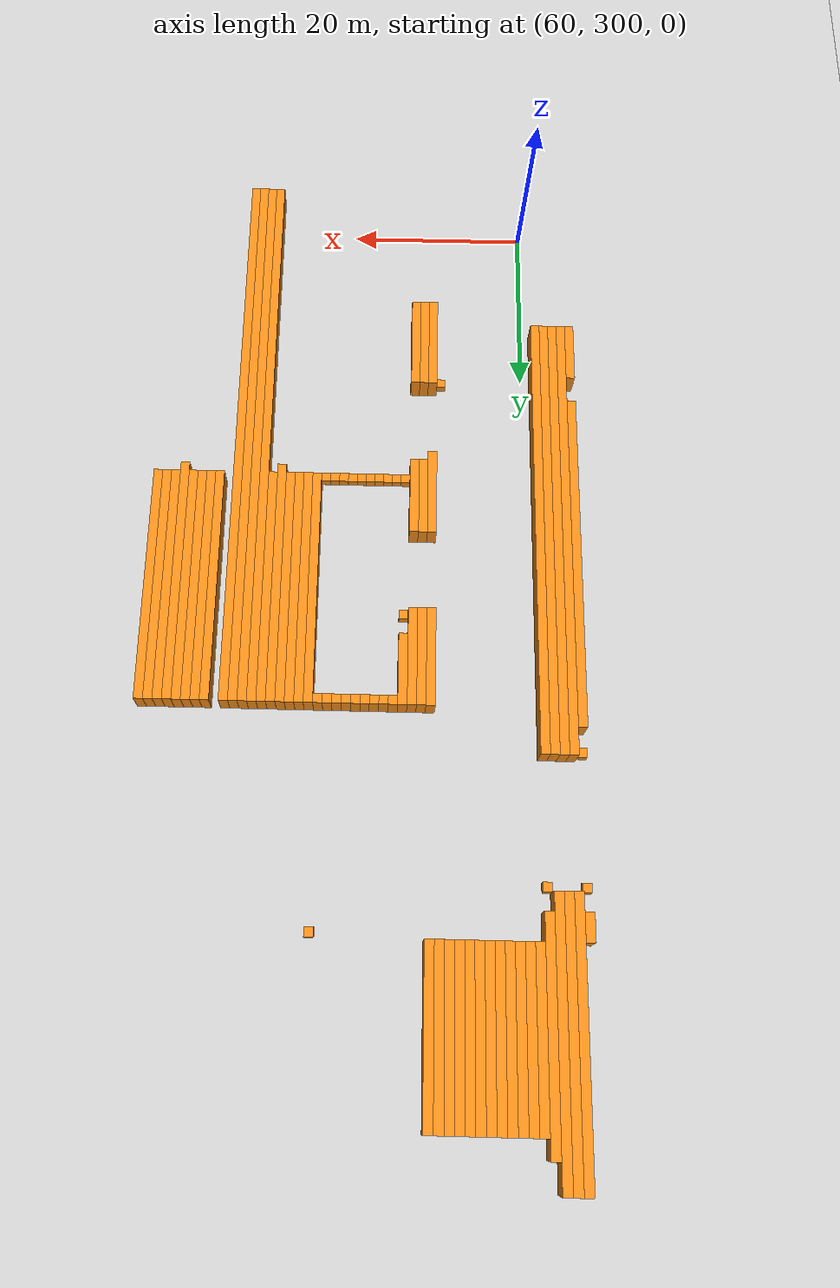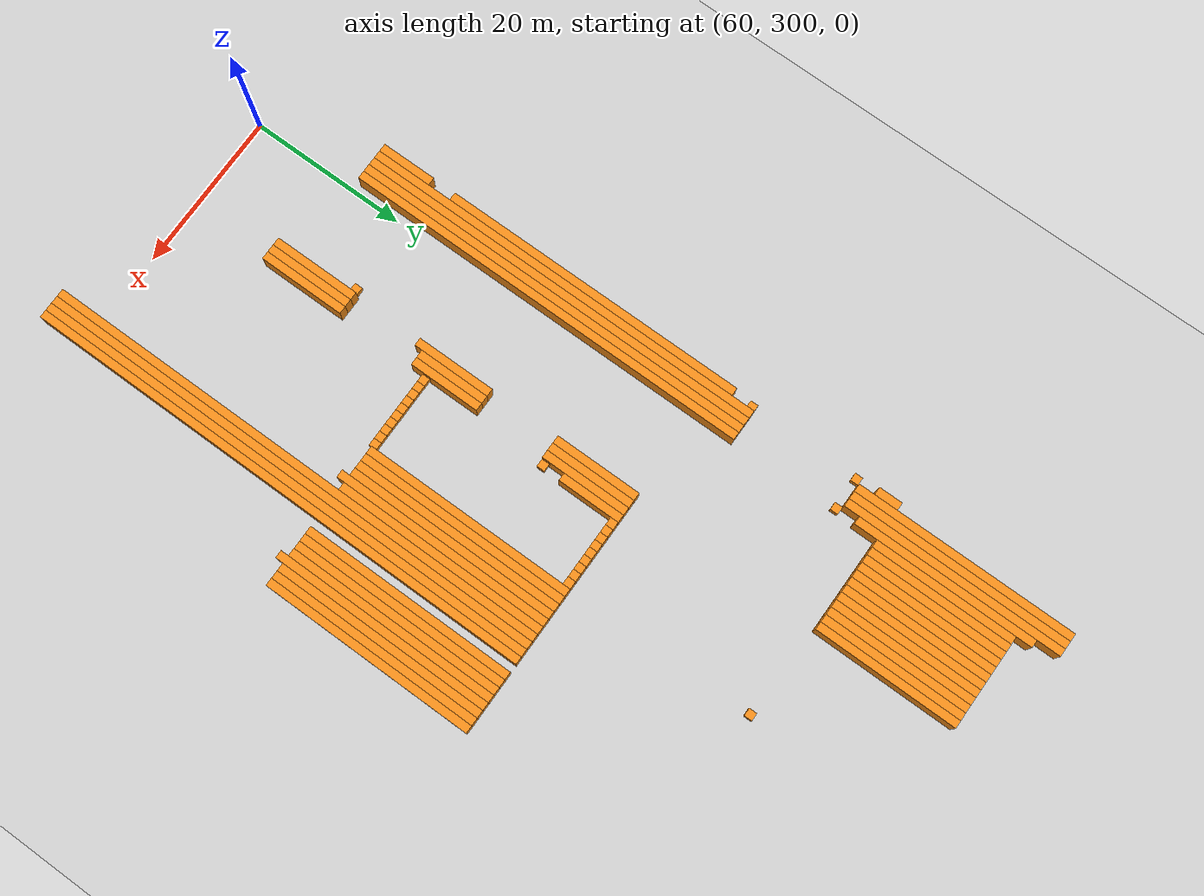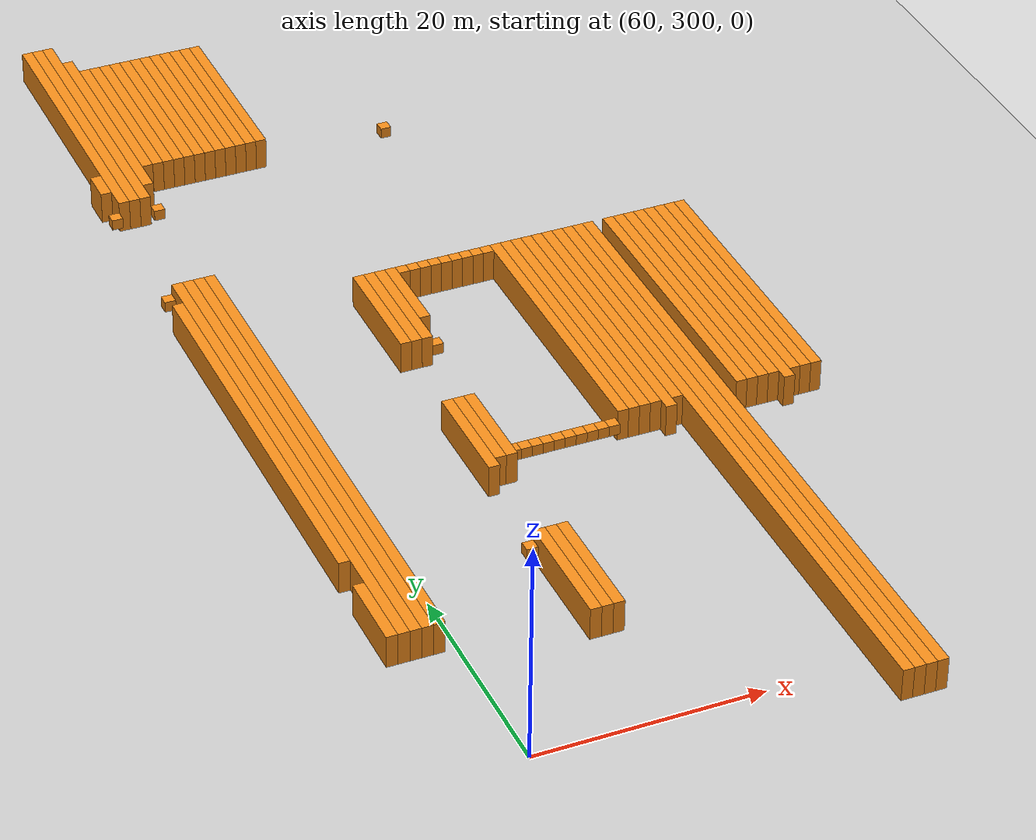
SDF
<sdf version="1.6">
 <world name="default">
  <include><uri>model://ground_plane</uri></include>
  <model name="unit_box_644">
   <pose>54.50   317.50     1.50 0 0 0</pose>
   <static>1</static>
   <link name="link">
    <inertial>
     <mass>5000</mass>
     <inertia><ixx>200</ixx><ixy>0</ixy><ixz>0</ixz><iyy>200</iyy><iyz>0</iyz><izz>200</izz></inertia>
    </inertial>
    <collision name="collision"><geometry><box><size>1 7 3</size></box></geometry></collision>
    <visual name="visual">
     <geometry><box><size>1 7 3</size></box></geometry>
     <material>
      <script><name>Gazebo/Orange</name><uri>file://media/materials/scripts/gazebo.material</uri></script>
     </material>
    </visual>
   </link>
  </model>
  <model name="unit_box_645">
   <pose>54.50   343.50     1.50 0 0 0</pose>
   <static>1</static>
   <link name="link">
    <inertial>
     <mass>5000</mass>
     <inertia><ixx>200</ixx><ixy>0</ixy><ixz>0</ixz><iyy>200</iyy><iyz>0</iyz><izz>200</izz></inertia>
    </inertial>
    <collision name="collision"><geometry><box><size>1 39 3</size></box></geometry></collision>
    <visual name="visual">
     <geometry><box><size>1 39 3</size></box></geometry>
     <material>
      <script><name>Gazebo/Orange</name><uri>file://media/materials/scripts/gazebo.material</uri></script>
     </material>
    </visual>
   </link>
  </model>
  <model name="unit_box_646">
   <pose>54.50   365.50     1.50 0 0 0</pose>
   <static>1</static>
   <link name="link">
    <inertial>
     <mass>5000</mass>
     <inertia><ixx>200</ixx><ixy>0</ixy><ixz>0</ixz><iyy>200</iyy><iyz>0</iyz><izz>200</izz></inertia>
    </inertial>
    <collision name="collision"><geometry><box><size>1 1 1</size></box></geometry></collision>
    <visual name="visual">
     <geometry><box><size>1 1 1</size></box></geometry>
     <material>
      <script><name>Gazebo/Orange</name><uri>file://media/materials/scripts/gazebo.material</uri></script>
     </material>
    </visual>
   </link>
  </model>
  <model name="unit_box_647">
   <pose>54.50   379.50     1.50 0 0 0</pose>
   <static>1</static>
   <link name="link">
    <inertial>
     <mass>5000</mass>
     <inertia><ixx>200</ixx><ixy>0</ixy><ixz>0</ixz><iyy>200</iyy><iyz>0</iyz><izz>200</izz></inertia>
    </inertial>
    <collision name="collision"><geometry><box><size>1 1 1</size></box></geometry></collision>
    <visual name="visual">
     <geometry><box><size>1 1 1</size></box></geometry>
     <material>
      <script><name>Gazebo/Orange</name><uri>file://media/materials/scripts/gazebo.material</uri></script>
     </material>
    </visual>
   </link>
  </model>
  <model name="unit_box_648">
   <pose>54.50   383.50     1.50 0 0 0</pose>
   <static>1</static>
   <link name="link">
    <inertial>
     <mass>5000</mass>
     <inertia><ixx>200</ixx><ixy>0</ixy><ixz>0</ixz><iyy>200</iyy><iyz>0</iyz><izz>200</izz></inertia>
    </inertial>
    <collision name="collision"><geometry><box><size>1 3 3</size></box></geometry></collision>
    <visual name="visual">
     <geometry><box><size>1 3 3</size></box></geometry>
     <material>
      <script><name>Gazebo/Orange</name><uri>file://media/materials/scripts/gazebo.material</uri></script>
     </material>
    </visual>
   </link>
  </model>
  <model name="unit_box_659">
   <pose>55.50   340.00     1.50 0 0 0</pose>
   <static>1</static>
   <link name="link">
    <inertial>
     <mass>5000</mass>
     <inertia><ixx>200</ixx><ixy>0</ixy><ixz>0</ixz><iyy>200</iyy><iyz>0</iyz><izz>200</izz></inertia>
    </inertial>
    <collision name="collision"><geometry><box><size>1 52 3</size></box></geometry></collision>
    <visual name="visual">
     <geometry><box><size>1 52 3</size></box></geometry>
     <material>
      <script><name>Gazebo/Orange</name><uri>file://media/materials/scripts/gazebo.material</uri></script>
     </material>
    </visual>
   </link>
  </model>
  <model name="unit_box_660">
   <pose>55.50   394.00     1.50 0 0 0</pose>
   <static>1</static>
   <link name="link">
    <inertial>
     <mass>5000</mass>
     <inertia><ixx>200</ixx><ixy>0</ixy><ixz>0</ixz><iyy>200</iyy><iyz>0</iyz><izz>200</izz></inertia>
    </inertial>
    <collision name="collision"><geometry><box><size>1 28 3</size></box></geometry></collision>
    <visual name="visual">
     <geometry><box><size>1 28 3</size></box></geometry>
     <material>
      <script><name>Gazebo/Orange</name><uri>file://media/materials/scripts/gazebo.material</uri></script>
     </material>
    </visual>
   </link>
  </model>
  <model name="unit_box_666">
   <pose>56.50   340.00     1.50 0 0 0</pose>
   <static>1</static>
   <link name="link">
    <inertial>
     <mass>5000</mass>
     <inertia><ixx>200</ixx><ixy>0</ixy><ixz>0</ixz><iyy>200</iyy><iyz>0</iyz><izz>200</izz></inertia>
    </inertial>
    <collision name="collision"><geometry><box><size>1 52 3</size></box></geometry></collision>
    <visual name="visual">
     <geometry><box><size>1 52 3</size></box></geometry>
     <material>
      <script><name>Gazebo/Orange</name><uri>file://media/materials/scripts/gazebo.material</uri></script>
     </material>
    </visual>
   </link>
  </model>
  <model name="unit_box_667">
   <pose>56.50   394.00     1.50 0 0 0</pose>
   <static>1</static>
   <link name="link">
    <inertial>
     <mass>5000</mass>
     <inertia><ixx>200</ixx><ixy>0</ixy><ixz>0</ixz><iyy>200</iyy><iyz>0</iyz><izz>200</izz></inertia>
    </inertial>
    <collision name="collision"><geometry><box><size>1 28 3</size></box></geometry></collision>
    <visual name="visual">
     <geometry><box><size>1 28 3</size></box></geometry>
     <material>
      <script><name>Gazebo/Orange</name><uri>file://media/materials/scripts/gazebo.material</uri></script>
     </material>
    </visual>
   </link>
  </model>
  <model name="unit_box_673">
   <pose>57.50   340.00     1.50 0 0 0</pose>
   <static>1</static>
   <link name="link">
    <inertial>
     <mass>5000</mass>
     <inertia><ixx>200</ixx><ixy>0</ixy><ixz>0</ixz><iyy>200</iyy><iyz>0</iyz><izz>200</izz></inertia>
    </inertial>
    <collision name="collision"><geometry><box><size>1 52 3</size></box></geometry></collision>
    <visual name="visual">
     <geometry><box><size>1 52 3</size></box></geometry>
     <material>
      <script><name>Gazebo/Orange</name><uri>file://media/materials/scripts/gazebo.material</uri></script>
     </material>
    </visual>
   </link>
  </model>
  <model name="unit_box_674">
   <pose>57.50   394.00     1.50 0 0 0</pose>
   <static>1</static>
   <link name="link">
    <inertial>
     <mass>5000</mass>
     <inertia><ixx>200</ixx><ixy>0</ixy><ixz>0</ixz><iyy>200</iyy><iyz>0</iyz><izz>200</izz></inertia>
    </inertial>
    <collision name="collision"><geometry><box><size>1 28 3</size></box></geometry></collision>
    <visual name="visual">
     <geometry><box><size>1 28 3</size></box></geometry>
     <material>
      <script><name>Gazebo/Orange</name><uri>file://media/materials/scripts/gazebo.material</uri></script>
     </material>
    </visual>
   </link>
  </model>
  <model name="unit_box_681">
   <pose>58.50   340.00     1.50 0 0 0</pose>
   <static>1</static>
   <link name="link">
    <inertial>
     <mass>5000</mass>
     <inertia><ixx>200</ixx><ixy>0</ixy><ixz>0</ixz><iyy>200</iyy><iyz>0</iyz><izz>200</izz></inertia>
    </inertial>
    <collision name="collision"><geometry><box><size>1 52 3</size></box></geometry></collision>
    <visual name="visual">
     <geometry><box><size>1 52 3</size></box></geometry>
     <material>
      <script><name>Gazebo/Orange</name><uri>file://media/materials/scripts/gazebo.material</uri></script>
     </material>
    </visual>
   </link>
  </model>
  <model name="unit_box_682">
   <pose>58.50   379.50     1.50 0 0 0</pose>
   <static>1</static>
   <link name="link">
    <inertial>
     <mass>5000</mass>
     <inertia><ixx>200</ixx><ixy>0</ixy><ixz>0</ixz><iyy>200</iyy><iyz>0</iyz><izz>200</izz></inertia>
    </inertial>
    <collision name="collision"><geometry><box><size>1 1 1</size></box></geometry></collision>
    <visual name="visual">
     <geometry><box><size>1 1 1</size></box></geometry>
     <material>
      <script><name>Gazebo/Orange</name><uri>file://media/materials/scripts/gazebo.material</uri></script>
     </material>
    </visual>
   </link>
  </model>
  <model name="unit_box_683">
   <pose>58.50   393.50     1.50 0 0 0</pose>
   <static>1</static>
   <link name="link">
    <inertial>
     <mass>5000</mass>
     <inertia><ixx>200</ixx><ixy>0</ixy><ixz>0</ixz><iyy>200</iyy><iyz>0</iyz><izz>200</izz></inertia>
    </inertial>
    <collision name="collision"><geometry><box><size>1 23 3</size></box></geometry></collision>
    <visual name="visual">
     <geometry><box><size>1 23 3</size></box></geometry>
     <material>
      <script><name>Gazebo/Orange</name><uri>file://media/materials/scripts/gazebo.material</uri></script>
     </material>
    </visual>
   </link>
  </model>
  <model name="unit_box_689">
   <pose>59.50   394.00     1.50 0 0 0</pose>
   <static>1</static>
   <link name="link">
    <inertial>
     <mass>5000</mass>
     <inertia><ixx>200</ixx><ixy>0</ixy><ixz>0</ixz><iyy>200</iyy><iyz>0</iyz><izz>200</izz></inertia>
    </inertial>
    <collision name="collision"><geometry><box><size>1 18 3</size></box></geometry></collision>
    <visual name="visual">
     <geometry><box><size>1 18 3</size></box></geometry>
     <material>
      <script><name>Gazebo/Orange</name><uri>file://media/materials/scripts/gazebo.material</uri></script>
     </material>
    </visual>
   </link>
  </model>
  <model name="unit_box_694">
   <pose>60.50   394.00     1.50 0 0 0</pose>
   <static>1</static>
   <link name="link">
    <inertial>
     <mass>5000</mass>
     <inertia><ixx>200</ixx><ixy>0</ixy><ixz>0</ixz><iyy>200</iyy><iyz>0</iyz><izz>200</izz></inertia>
    </inertial>
    <collision name="collision"><geometry><box><size>1 18 3</size></box></geometry></collision>
    <visual name="visual">
     <geometry><box><size>1 18 3</size></box></geometry>
     <material>
      <script><name>Gazebo/Orange</name><uri>file://media/materials/scripts/gazebo.material</uri></script>
     </material>
    </visual>
   </link>
  </model>
  <model name="unit_box_699">
   <pose>61.50   394.00     1.50 0 0 0</pose>
   <static>1</static>
   <link name="link">
    <inertial>
     <mass>5000</mass>
     <inertia><ixx>200</ixx><ixy>0</ixy><ixz>0</ixz><iyy>200</iyy><iyz>0</iyz><izz>200</izz></inertia>
    </inertial>
    <collision name="collision"><geometry><box><size>1 18 3</size></box></geometry></collision>
    <visual name="visual">
     <geometry><box><size>1 18 3</size></box></geometry>
     <material>
      <script><name>Gazebo/Orange</name><uri>file://media/materials/scripts/gazebo.material</uri></script>
     </material>
    </visual>
   </link>
  </model>
  <model name="unit_box_704">
   <pose>62.50   394.00     1.50 0 0 0</pose>
   <static>1</static>
   <link name="link">
    <inertial>
     <mass>5000</mass>
     <inertia><ixx>200</ixx><ixy>0</ixy><ixz>0</ixz><iyy>200</iyy><iyz>0</iyz><izz>200</izz></inertia>
    </inertial>
    <collision name="collision"><geometry><box><size>1 18 3</size></box></geometry></collision>
    <visual name="visual">
     <geometry><box><size>1 18 3</size></box></geometry>
     <material>
      <script><name>Gazebo/Orange</name><uri>file://media/materials/scripts/gazebo.material</uri></script>
     </material>
    </visual>
   </link>
  </model>
  <model name="unit_box_709">
   <pose>63.50   394.00     1.50 0 0 0</pose>
   <static>1</static>
   <link name="link">
    <inertial>
     <mass>5000</mass>
     <inertia><ixx>200</ixx><ixy>0</ixy><ixz>0</ixz><iyy>200</iyy><iyz>0</iyz><izz>200</izz></inertia>
    </inertial>
    <collision name="collision"><geometry><box><size>1 18 3</size></box></geometry></collision>
    <visual name="visual">
     <geometry><box><size>1 18 3</size></box></geometry>
     <material>
      <script><name>Gazebo/Orange</name><uri>file://media/materials/scripts/gazebo.material</uri></script>
     </material>
    </visual>
   </link>
  </model>
  <model name="unit_box_714">
   <pose>64.50   394.00     1.50 0 0 0</pose>
   <static>1</static>
   <link name="link">
    <inertial>
     <mass>5000</mass>
     <inertia><ixx>200</ixx><ixy>0</ixy><ixz>0</ixz><iyy>200</iyy><iyz>0</iyz><izz>200</izz></inertia>
    </inertial>
    <collision name="collision"><geometry><box><size>1 18 3</size></box></geometry></collision>
    <visual name="visual">
     <geometry><box><size>1 18 3</size></box></geometry>
     <material>
      <script><name>Gazebo/Orange</name><uri>file://media/materials/scripts/gazebo.material</uri></script>
     </material>
    </visual>
   </link>
  </model>
  <model name="unit_box_720">
   <pose>65.50   394.00     1.50 0 0 0</pose>
   <static>1</static>
   <link name="link">
    <inertial>
     <mass>5000</mass>
     <inertia><ixx>200</ixx><ixy>0</ixy><ixz>0</ixz><iyy>200</iyy><iyz>0</iyz><izz>200</izz></inertia>
    </inertial>
    <collision name="collision"><geometry><box><size>1 18 3</size></box></geometry></collision>
    <visual name="visual">
     <geometry><box><size>1 18 3</size></box></geometry>
     <material>
      <script><name>Gazebo/Orange</name><uri>file://media/materials/scripts/gazebo.material</uri></script>
     </material>
    </visual>
   </link>
  </model>
  <model name="unit_box_726">
   <pose>66.50   394.00     1.50 0 0 0</pose>
   <static>1</static>
   <link name="link">
    <inertial>
     <mass>5000</mass>
     <inertia><ixx>200</ixx><ixy>0</ixy><ixz>0</ixz><iyy>200</iyy><iyz>0</iyz><izz>200</izz></inertia>
    </inertial>
    <collision name="collision"><geometry><box><size>1 18 3</size></box></geometry></collision>
    <visual name="visual">
     <geometry><box><size>1 18 3</size></box></geometry>
     <material>
      <script><name>Gazebo/Orange</name><uri>file://media/materials/scripts/gazebo.material</uri></script>
     </material>
    </visual>
   </link>
  </model>
  <model name="unit_box_732">
   <pose>67.50   394.00     1.50 0 0 0</pose>
   <static>1</static>
   <link name="link">
    <inertial>
     <mass>5000</mass>
     <inertia><ixx>200</ixx><ixy>0</ixy><ixz>0</ixz><iyy>200</iyy><iyz>0</iyz><izz>200</izz></inertia>
    </inertial>
    <collision name="collision"><geometry><box><size>1 18 3</size></box></geometry></collision>
    <visual name="visual">
     <geometry><box><size>1 18 3</size></box></geometry>
     <material>
      <script><name>Gazebo/Orange</name><uri>file://media/materials/scripts/gazebo.material</uri></script>
     </material>
    </visual>
   </link>
  </model>
  <model name="unit_box_738">
   <pose>68.50   394.00     1.50 0 0 0</pose>
   <static>1</static>
   <link name="link">
    <inertial>
     <mass>5000</mass>
     <inertia><ixx>200</ixx><ixy>0</ixy><ixz>0</ixz><iyy>200</iyy><iyz>0</iyz><izz>200</izz></inertia>
    </inertial>
    <collision name="collision"><geometry><box><size>1 18 3</size></box></geometry></collision>
    <visual name="visual">
     <geometry><box><size>1 18 3</size></box></geometry>
     <material>
      <script><name>Gazebo/Orange</name><uri>file://media/materials/scripts/gazebo.material</uri></script>
     </material>
    </visual>
   </link>
  </model>
  <model name="unit_box_752">
   <pose>69.50   321.50     1.50 0 0 0</pose>
   <static>1</static>
   <link name="link">
    <inertial>
     <mass>5000</mass>
     <inertia><ixx>200</ixx><ixy>0</ixy><ixz>0</ixz><iyy>200</iyy><iyz>0</iyz><izz>200</izz></inertia>
    </inertial>
    <collision name="collision"><geometry><box><size>1 1 1</size></box></geometry></collision>
    <visual name="visual">
     <geometry><box><size>1 1 1</size></box></geometry>
     <material>
      <script><name>Gazebo/Orange</name><uri>file://media/materials/scripts/gazebo.material</uri></script>
     </material>
    </visual>
   </link>
  </model>
  <model name="unit_box_753">
   <pose>69.50   394.00     1.50 0 0 0</pose>
   <static>1</static>
   <link name="link">
    <inertial>
     <mass>5000</mass>
     <inertia><ixx>200</ixx><ixy>0</ixy><ixz>0</ixz><iyy>200</iyy><iyz>0</iyz><izz>200</izz></inertia>
    </inertial>
    <collision name="collision"><geometry><box><size>1 18 3</size></box></geometry></collision>
    <visual name="visual">
     <geometry><box><size>1 18 3</size></box></geometry>
     <material>
      <script><name>Gazebo/Orange</name><uri>file://media/materials/scripts/gazebo.material</uri></script>
     </material>
    </visual>
   </link>
  </model>
  <model name="unit_box_763">
   <pose>70.50   316.50     1.50 0 0 0</pose>
   <static>1</static>
   <link name="link">
    <inertial>
     <mass>5000</mass>
     <inertia><ixx>200</ixx><ixy>0</ixy><ixz>0</ixz><iyy>200</iyy><iyz>0</iyz><izz>200</izz></inertia>
    </inertial>
    <collision name="collision"><geometry><box><size>1 11 3</size></box></geometry></collision>
    <visual name="visual">
     <geometry><box><size>1 11 3</size></box></geometry>
     <material>
      <script><name>Gazebo/Orange</name><uri>file://media/materials/scripts/gazebo.material</uri></script>
     </material>
    </visual>
   </link>
  </model>
  <model name="unit_box_764">
   <pose>70.50   336.00     1.50 0 0 0</pose>
   <static>1</static>
   <link name="link">
    <inertial>
     <mass>5000</mass>
     <inertia><ixx>200</ixx><ixy>0</ixy><ixz>0</ixz><iyy>200</iyy><iyz>0</iyz><izz>200</izz></inertia>
    </inertial>
    <collision name="collision"><geometry><box><size>1 10 3</size></box></geometry></collision>
    <visual name="visual">
     <geometry><box><size>1 10 3</size></box></geometry>
     <material>
      <script><name>Gazebo/Orange</name><uri>file://media/materials/scripts/gazebo.material</uri></script>
     </material>
    </visual>
   </link>
  </model>
  <model name="unit_box_765">
   <pose>70.50   355.50     1.50 0 0 0</pose>
   <static>1</static>
   <link name="link">
    <inertial>
     <mass>5000</mass>
     <inertia><ixx>200</ixx><ixy>0</ixy><ixz>0</ixz><iyy>200</iyy><iyz>0</iyz><izz>200</izz></inertia>
    </inertial>
    <collision name="collision"><geometry><box><size>1 11 3</size></box></geometry></collision>
    <visual name="visual">
     <geometry><box><size>1 11 3</size></box></geometry>
     <material>
      <script><name>Gazebo/Orange</name><uri>file://media/materials/scripts/gazebo.material</uri></script>
     </material>
    </visual>
   </link>
  </model>
  <model name="unit_box_766">
   <pose>70.50   394.00     1.50 0 0 0</pose>
   <static>1</static>
   <link name="link">
    <inertial>
     <mass>5000</mass>
     <inertia><ixx>200</ixx><ixy>0</ixy><ixz>0</ixz><iyy>200</iyy><iyz>0</iyz><izz>200</izz></inertia>
    </inertial>
    <collision name="collision"><geometry><box><size>1 18 3</size></box></geometry></collision>
    <visual name="visual">
     <geometry><box><size>1 18 3</size></box></geometry>
     <material>
      <script><name>Gazebo/Orange</name><uri>file://media/materials/scripts/gazebo.material</uri></script>
     </material>
    </visual>
   </link>
  </model>
  <model name="unit_box_776">
   <pose>71.50   316.50     1.50 0 0 0</pose>
   <static>1</static>
   <link name="link">
    <inertial>
     <mass>5000</mass>
     <inertia><ixx>200</ixx><ixy>0</ixy><ixz>0</ixz><iyy>200</iyy><iyz>0</iyz><izz>200</izz></inertia>
    </inertial>
    <collision name="collision"><geometry><box><size>1 11 3</size></box></geometry></collision>
    <visual name="visual">
     <geometry><box><size>1 11 3</size></box></geometry>
     <material>
      <script><name>Gazebo/Orange</name><uri>file://media/materials/scripts/gazebo.material</uri></script>
     </material>
    </visual>
   </link>
  </model>
  <model name="unit_box_777">
   <pose>71.50   336.50     1.50 0 0 0</pose>
   <static>1</static>
   <link name="link">
    <inertial>
     <mass>5000</mass>
     <inertia><ixx>200</ixx><ixy>0</ixy><ixz>0</ixz><iyy>200</iyy><iyz>0</iyz><izz>200</izz></inertia>
    </inertial>
    <collision name="collision"><geometry><box><size>1 9 3</size></box></geometry></collision>
    <visual name="visual">
     <geometry><box><size>1 9 3</size></box></geometry>
     <material>
      <script><name>Gazebo/Orange</name><uri>file://media/materials/scripts/gazebo.material</uri></script>
     </material>
    </visual>
   </link>
  </model>
  <model name="unit_box_778">
   <pose>71.50   355.50     1.50 0 0 0</pose>
   <static>1</static>
   <link name="link">
    <inertial>
     <mass>5000</mass>
     <inertia><ixx>200</ixx><ixy>0</ixy><ixz>0</ixz><iyy>200</iyy><iyz>0</iyz><izz>200</izz></inertia>
    </inertial>
    <collision name="collision"><geometry><box><size>1 11 3</size></box></geometry></collision>
    <visual name="visual">
     <geometry><box><size>1 11 3</size></box></geometry>
     <material>
      <script><name>Gazebo/Orange</name><uri>file://media/materials/scripts/gazebo.material</uri></script>
     </material>
    </visual>
   </link>
  </model>
  <model name="unit_box_791">
   <pose>72.50   316.50     1.50 0 0 0</pose>
   <static>1</static>
   <link name="link">
    <inertial>
     <mass>5000</mass>
     <inertia><ixx>200</ixx><ixy>0</ixy><ixz>0</ixz><iyy>200</iyy><iyz>0</iyz><izz>200</izz></inertia>
    </inertial>
    <collision name="collision"><geometry><box><size>1 11 3</size></box></geometry></collision>
    <visual name="visual">
     <geometry><box><size>1 11 3</size></box></geometry>
     <material>
      <script><name>Gazebo/Orange</name><uri>file://media/materials/scripts/gazebo.material</uri></script>
     </material>
    </visual>
   </link>
  </model>
  <model name="unit_box_792">
   <pose>72.50   336.50     1.50 0 0 0</pose>
   <static>1</static>
   <link name="link">
    <inertial>
     <mass>5000</mass>
     <inertia><ixx>200</ixx><ixy>0</ixy><ixz>0</ixz><iyy>200</iyy><iyz>0</iyz><izz>200</izz></inertia>
    </inertial>
    <collision name="collision"><geometry><box><size>1 9 3</size></box></geometry></collision>
    <visual name="visual">
     <geometry><box><size>1 9 3</size></box></geometry>
     <material>
      <script><name>Gazebo/Orange</name><uri>file://media/materials/scripts/gazebo.material</uri></script>
     </material>
    </visual>
   </link>
  </model>
  <model name="unit_box_793">
   <pose>72.50   355.50     1.50 0 0 0</pose>
   <static>1</static>
   <link name="link">
    <inertial>
     <mass>5000</mass>
     <inertia><ixx>200</ixx><ixy>0</ixy><ixz>0</ixz><iyy>200</iyy><iyz>0</iyz><izz>200</izz></inertia>
    </inertial>
    <collision name="collision"><geometry><box><size>1 11 3</size></box></geometry></collision>
    <visual name="visual">
     <geometry><box><size>1 11 3</size></box></geometry>
     <material>
      <script><name>Gazebo/Orange</name><uri>file://media/materials/scripts/gazebo.material</uri></script>
     </material>
    </visual>
   </link>
  </model>
  <model name="unit_box_807">
   <pose>73.50   334.00     1.50 0 0 0</pose>
   <static>1</static>
   <link name="link">
    <inertial>
     <mass>5000</mass>
     <inertia><ixx>200</ixx><ixy>0</ixy><ixz>0</ixz><iyy>200</iyy><iyz>0</iyz><izz>200</izz></inertia>
    </inertial>
    <collision name="collision"><geometry><box><size>1 1 1</size></box></geometry></collision>
    <visual name="visual">
     <geometry><box><size>1 1 1</size></box></geometry>
     <material>
      <script><name>Gazebo/Orange</name><uri>file://media/materials/scripts/gazebo.material</uri></script>
     </material>
    </visual>
   </link>
  </model>
  <model name="unit_box_808">
   <pose>73.50   350.50     1.50 0 0 0</pose>
   <static>1</static>
   <link name="link">
    <inertial>
     <mass>5000</mass>
     <inertia><ixx>200</ixx><ixy>0</ixy><ixz>0</ixz><iyy>200</iyy><iyz>0</iyz><izz>200</izz></inertia>
    </inertial>
    <collision name="collision"><geometry><box><size>1 1 1</size></box></geometry></collision>
    <visual name="visual">
     <geometry><box><size>1 1 1</size></box></geometry>
     <material>
      <script><name>Gazebo/Orange</name><uri>file://media/materials/scripts/gazebo.material</uri></script>
     </material>
    </visual>
   </link>
  </model>
  <model name="unit_box_809">
   <pose>73.50   357.00     1.50 0 0 0</pose>
   <static>1</static>
   <link name="link">
    <inertial>
     <mass>5000</mass>
     <inertia><ixx>200</ixx><ixy>0</ixy><ixz>0</ixz><iyy>200</iyy><iyz>0</iyz><izz>200</izz></inertia>
    </inertial>
    <collision name="collision"><geometry><box><size>1 8 3</size></box></geometry></collision>
    <visual name="visual">
     <geometry><box><size>1 8 3</size></box></geometry>
     <material>
      <script><name>Gazebo/Orange</name><uri>file://media/materials/scripts/gazebo.material</uri></script>
     </material>
    </visual>
   </link>
  </model>
  <model name="unit_box_823">
   <pose>74.50   334.00     1.50 0 0 0</pose>
   <static>1</static>
   <link name="link">
    <inertial>
     <mass>5000</mass>
     <inertia><ixx>200</ixx><ixy>0</ixy><ixz>0</ixz><iyy>200</iyy><iyz>0</iyz><izz>200</izz></inertia>
    </inertial>
    <collision name="collision"><geometry><box><size>1 1 1</size></box></geometry></collision>
    <visual name="visual">
     <geometry><box><size>1 1 1</size></box></geometry>
     <material>
      <script><name>Gazebo/Orange</name><uri>file://media/materials/scripts/gazebo.material</uri></script>
     </material>
    </visual>
   </link>
  </model>
  <model name="unit_box_824">
   <pose>74.50   360.50     1.50 0 0 0</pose>
   <static>1</static>
   <link name="link">
    <inertial>
     <mass>5000</mass>
     <inertia><ixx>200</ixx><ixy>0</ixy><ixz>0</ixz><iyy>200</iyy><iyz>0</iyz><izz>200</izz></inertia>
    </inertial>
    <collision name="collision"><geometry><box><size>1 1 3</size></box></geometry></collision>
    <visual name="visual">
     <geometry><box><size>1 1 3</size></box></geometry>
     <material>
      <script><name>Gazebo/Orange</name><uri>file://media/materials/scripts/gazebo.material</uri></script>
     </material>
    </visual>
   </link>
  </model>
  <model name="unit_box_838">
   <pose>75.50   334.00     1.50 0 0 0</pose>
   <static>1</static>
   <link name="link">
    <inertial>
     <mass>5000</mass>
     <inertia><ixx>200</ixx><ixy>0</ixy><ixz>0</ixz><iyy>200</iyy><iyz>0</iyz><izz>200</izz></inertia>
    </inertial>
    <collision name="collision"><geometry><box><size>1 1 1</size></box></geometry></collision>
    <visual name="visual">
     <geometry><box><size>1 1 1</size></box></geometry>
     <material>
      <script><name>Gazebo/Orange</name><uri>file://media/materials/scripts/gazebo.material</uri></script>
     </material>
    </visual>
   </link>
  </model>
  <model name="unit_box_839">
   <pose>75.50   360.50     1.50 0 0 0</pose>
   <static>1</static>
   <link name="link">
    <inertial>
     <mass>5000</mass>
     <inertia><ixx>200</ixx><ixy>0</ixy><ixz>0</ixz><iyy>200</iyy><iyz>0</iyz><izz>200</izz></inertia>
    </inertial>
    <collision name="collision"><geometry><box><size>1 1 3</size></box></geometry></collision>
    <visual name="visual">
     <geometry><box><size>1 1 3</size></box></geometry>
     <material>
      <script><name>Gazebo/Orange</name><uri>file://media/materials/scripts/gazebo.material</uri></script>
     </material>
    </visual>
   </link>
  </model>
  <model name="unit_box_853">
   <pose>76.50   334.00     1.50 0 0 0</pose>
   <static>1</static>
   <link name="link">
    <inertial>
     <mass>5000</mass>
     <inertia><ixx>200</ixx><ixy>0</ixy><ixz>0</ixz><iyy>200</iyy><iyz>0</iyz><izz>200</izz></inertia>
    </inertial>
    <collision name="collision"><geometry><box><size>1 1 1</size></box></geometry></collision>
    <visual name="visual">
     <geometry><box><size>1 1 1</size></box></geometry>
     <material>
      <script><name>Gazebo/Orange</name><uri>file://media/materials/scripts/gazebo.material</uri></script>
     </material>
    </visual>
   </link>
  </model>
  <model name="unit_box_854">
   <pose>76.50   360.50     1.50 0 0 0</pose>
   <static>1</static>
   <link name="link">
    <inertial>
     <mass>5000</mass>
     <inertia><ixx>200</ixx><ixy>0</ixy><ixz>0</ixz><iyy>200</iyy><iyz>0</iyz><izz>200</izz></inertia>
    </inertial>
    <collision name="collision"><geometry><box><size>1 1 3</size></box></geometry></collision>
    <visual name="visual">
     <geometry><box><size>1 1 3</size></box></geometry>
     <material>
      <script><name>Gazebo/Orange</name><uri>file://media/materials/scripts/gazebo.material</uri></script>
     </material>
    </visual>
   </link>
  </model>
  <model name="unit_box_867">
   <pose>77.50   334.00     1.50 0 0 0</pose>
   <static>1</static>
   <link name="link">
    <inertial>
     <mass>5000</mass>
     <inertia><ixx>200</ixx><ixy>0</ixy><ixz>0</ixz><iyy>200</iyy><iyz>0</iyz><izz>200</izz></inertia>
    </inertial>
    <collision name="collision"><geometry><box><size>1 1 1</size></box></geometry></collision>
    <visual name="visual">
     <geometry><box><size>1 1 1</size></box></geometry>
     <material>
      <script><name>Gazebo/Orange</name><uri>file://media/materials/scripts/gazebo.material</uri></script>
     </material>
    </visual>
   </link>
  </model>
  <model name="unit_box_868">
   <pose>77.50   360.50     1.50 0 0 0</pose>
   <static>1</static>
   <link name="link">
    <inertial>
     <mass>5000</mass>
     <inertia><ixx>200</ixx><ixy>0</ixy><ixz>0</ixz><iyy>200</iyy><iyz>0</iyz><izz>200</izz></inertia>
    </inertial>
    <collision name="collision"><geometry><box><size>1 1 3</size></box></geometry></collision>
    <visual name="visual">
     <geometry><box><size>1 1 3</size></box></geometry>
     <material>
      <script><name>Gazebo/Orange</name><uri>file://media/materials/scripts/gazebo.material</uri></script>
     </material>
    </visual>
   </link>
  </model>
  <model name="unit_box_880">
   <pose>78.50   334.00     1.50 0 0 0</pose>
   <static>1</static>
   <link name="link">
    <inertial>
     <mass>5000</mass>
     <inertia><ixx>200</ixx><ixy>0</ixy><ixz>0</ixz><iyy>200</iyy><iyz>0</iyz><izz>200</izz></inertia>
    </inertial>
    <collision name="collision"><geometry><box><size>1 1 1</size></box></geometry></collision>
    <visual name="visual">
     <geometry><box><size>1 1 1</size></box></geometry>
     <material>
      <script><name>Gazebo/Orange</name><uri>file://media/materials/scripts/gazebo.material</uri></script>
     </material>
    </visual>
   </link>
  </model>
  <model name="unit_box_881">
   <pose>78.50   360.50     1.50 0 0 0</pose>
   <static>1</static>
   <link name="link">
    <inertial>
     <mass>5000</mass>
     <inertia><ixx>200</ixx><ixy>0</ixy><ixz>0</ixz><iyy>200</iyy><iyz>0</iyz><izz>200</izz></inertia>
    </inertial>
    <collision name="collision"><geometry><box><size>1 1 3</size></box></geometry></collision>
    <visual name="visual">
     <geometry><box><size>1 1 3</size></box></geometry>
     <material>
      <script><name>Gazebo/Orange</name><uri>file://media/materials/scripts/gazebo.material</uri></script>
     </material>
    </visual>
   </link>
  </model>
  <model name="unit_box_893">
   <pose>79.50   334.00     1.50 0 0 0</pose>
   <static>1</static>
   <link name="link">
    <inertial>
     <mass>5000</mass>
     <inertia><ixx>200</ixx><ixy>0</ixy><ixz>0</ixz><iyy>200</iyy><iyz>0</iyz><izz>200</izz></inertia>
    </inertial>
    <collision name="collision"><geometry><box><size>1 1 1</size></box></geometry></collision>
    <visual name="visual">
     <geometry><box><size>1 1 1</size></box></geometry>
     <material>
      <script><name>Gazebo/Orange</name><uri>file://media/materials/scripts/gazebo.material</uri></script>
     </material>
    </visual>
   </link>
  </model>
  <model name="unit_box_894">
   <pose>79.50   360.50     1.50 0 0 0</pose>
   <static>1</static>
   <link name="link">
    <inertial>
     <mass>5000</mass>
     <inertia><ixx>200</ixx><ixy>0</ixy><ixz>0</ixz><iyy>200</iyy><iyz>0</iyz><izz>200</izz></inertia>
    </inertial>
    <collision name="collision"><geometry><box><size>1 1 3</size></box></geometry></collision>
    <visual name="visual">
     <geometry><box><size>1 1 3</size></box></geometry>
     <material>
      <script><name>Gazebo/Orange</name><uri>file://media/materials/scripts/gazebo.material</uri></script>
     </material>
    </visual>
   </link>
  </model>
  <model name="unit_box_906">
   <pose>80.50   334.00     1.50 0 0 0</pose>
   <static>1</static>
   <link name="link">
    <inertial>
     <mass>5000</mass>
     <inertia><ixx>200</ixx><ixy>0</ixy><ixz>0</ixz><iyy>200</iyy><iyz>0</iyz><izz>200</izz></inertia>
    </inertial>
    <collision name="collision"><geometry><box><size>1 1 1</size></box></geometry></collision>
    <visual name="visual">
     <geometry><box><size>1 1 1</size></box></geometry>
     <material>
      <script><name>Gazebo/Orange</name><uri>file://media/materials/scripts/gazebo.material</uri></script>
     </material>
    </visual>
   </link>
  </model>
  <model name="unit_box_907">
   <pose>80.50   360.50     1.50 0 0 0</pose>
   <static>1</static>
   <link name="link">
    <inertial>
     <mass>5000</mass>
     <inertia><ixx>200</ixx><ixy>0</ixy><ixz>0</ixz><iyy>200</iyy><iyz>0</iyz><izz>200</izz></inertia>
    </inertial>
    <collision name="collision"><geometry><box><size>1 1 3</size></box></geometry></collision>
    <visual name="visual">
     <geometry><box><size>1 1 3</size></box></geometry>
     <material>
      <script><name>Gazebo/Orange</name><uri>file://media/materials/scripts/gazebo.material</uri></script>
     </material>
    </visual>
   </link>
  </model>
  <model name="unit_box_919">
   <pose>81.50   334.00     1.50 0 0 0</pose>
   <static>1</static>
   <link name="link">
    <inertial>
     <mass>5000</mass>
     <inertia><ixx>200</ixx><ixy>0</ixy><ixz>0</ixz><iyy>200</iyy><iyz>0</iyz><izz>200</izz></inertia>
    </inertial>
    <collision name="collision"><geometry><box><size>1 1 1</size></box></geometry></collision>
    <visual name="visual">
     <geometry><box><size>1 1 1</size></box></geometry>
     <material>
      <script><name>Gazebo/Orange</name><uri>file://media/materials/scripts/gazebo.material</uri></script>
     </material>
    </visual>
   </link>
  </model>
  <model name="unit_box_920">
   <pose>81.50   360.50     1.50 0 0 0</pose>
   <static>1</static>
   <link name="link">
    <inertial>
     <mass>5000</mass>
     <inertia><ixx>200</ixx><ixy>0</ixy><ixz>0</ixz><iyy>200</iyy><iyz>0</iyz><izz>200</izz></inertia>
    </inertial>
    <collision name="collision"><geometry><box><size>1 1 3</size></box></geometry></collision>
    <visual name="visual">
     <geometry><box><size>1 1 3</size></box></geometry>
     <material>
      <script><name>Gazebo/Orange</name><uri>file://media/materials/scripts/gazebo.material</uri></script>
     </material>
    </visual>
   </link>
  </model>
  <model name="unit_box_932">
   <pose>82.50   334.00     1.50 0 0 0</pose>
   <static>1</static>
   <link name="link">
    <inertial>
     <mass>5000</mass>
     <inertia><ixx>200</ixx><ixy>0</ixy><ixz>0</ixz><iyy>200</iyy><iyz>0</iyz><izz>200</izz></inertia>
    </inertial>
    <collision name="collision"><geometry><box><size>1 1 1</size></box></geometry></collision>
    <visual name="visual">
     <geometry><box><size>1 1 1</size></box></geometry>
     <material>
      <script><name>Gazebo/Orange</name><uri>file://media/materials/scripts/gazebo.material</uri></script>
     </material>
    </visual>
   </link>
  </model>
  <model name="unit_box_933">
   <pose>82.50   360.50     1.50 0 0 0</pose>
   <static>1</static>
   <link name="link">
    <inertial>
     <mass>5000</mass>
     <inertia><ixx>200</ixx><ixy>0</ixy><ixz>0</ixz><iyy>200</iyy><iyz>0</iyz><izz>200</izz></inertia>
    </inertial>
    <collision name="collision"><geometry><box><size>1 1 3</size></box></geometry></collision>
    <visual name="visual">
     <geometry><box><size>1 1 3</size></box></geometry>
     <material>
      <script><name>Gazebo/Orange</name><uri>file://media/materials/scripts/gazebo.material</uri></script>
     </material>
    </visual>
   </link>
  </model>
  <model name="unit_box_934">
   <pose>82.50   384.50     1.50 0 0 0</pose>
   <static>1</static>
   <link name="link">
    <inertial>
     <mass>5000</mass>
     <inertia><ixx>200</ixx><ixy>0</ixy><ixz>0</ixz><iyy>200</iyy><iyz>0</iyz><izz>200</izz></inertia>
    </inertial>
    <collision name="collision"><geometry><box><size>1 1 1</size></box></geometry></collision>
    <visual name="visual">
     <geometry><box><size>1 1 1</size></box></geometry>
     <material>
      <script><name>Gazebo/Orange</name><uri>file://media/materials/scripts/gazebo.material</uri></script>
     </material>
    </visual>
   </link>
  </model>
  <model name="unit_box_946">
   <pose>83.50   347.50     1.50 0 0 0</pose>
   <static>1</static>
   <link name="link">
    <inertial>
     <mass>5000</mass>
     <inertia><ixx>200</ixx><ixy>0</ixy><ixz>0</ixz><iyy>200</iyy><iyz>0</iyz><izz>200</izz></inertia>
    </inertial>
    <collision name="collision"><geometry><box><size>1 27 3</size></box></geometry></collision>
    <visual name="visual">
     <geometry><box><size>1 27 3</size></box></geometry>
     <material>
      <script><name>Gazebo/Orange</name><uri>file://media/materials/scripts/gazebo.material</uri></script>
     </material>
    </visual>
   </link>
  </model>
  <model name="unit_box_960">
   <pose>84.50   347.50     1.50 0 0 0</pose>
   <static>1</static>
   <link name="link">
    <inertial>
     <mass>5000</mass>
     <inertia><ixx>200</ixx><ixy>0</ixy><ixz>0</ixz><iyy>200</iyy><iyz>0</iyz><izz>200</izz></inertia>
    </inertial>
    <collision name="collision"><geometry><box><size>1 27 3</size></box></geometry></collision>
    <visual name="visual">
     <geometry><box><size>1 27 3</size></box></geometry>
     <material>
      <script><name>Gazebo/Orange</name><uri>file://media/materials/scripts/gazebo.material</uri></script>
     </material>
    </visual>
   </link>
  </model>
  <model name="unit_box_972">
   <pose>85.50   347.50     1.50 0 0 0</pose>
   <static>1</static>
   <link name="link">
    <inertial>
     <mass>5000</mass>
     <inertia><ixx>200</ixx><ixy>0</ixy><ixz>0</ixz><iyy>200</iyy><iyz>0</iyz><izz>200</izz></inertia>
    </inertial>
    <collision name="collision"><geometry><box><size>1 27 3</size></box></geometry></collision>
    <visual name="visual">
     <geometry><box><size>1 27 3</size></box></geometry>
     <material>
      <script><name>Gazebo/Orange</name><uri>file://media/materials/scripts/gazebo.material</uri></script>
     </material>
    </visual>
   </link>
  </model>
  <model name="unit_box_987">
   <pose>86.50   347.50     1.50 0 0 0</pose>
   <static>1</static>
   <link name="link">
    <inertial>
     <mass>5000</mass>
     <inertia><ixx>200</ixx><ixy>0</ixy><ixz>0</ixz><iyy>200</iyy><iyz>0</iyz><izz>200</izz></inertia>
    </inertial>
    <collision name="collision"><geometry><box><size>1 27 3</size></box></geometry></collision>
    <visual name="visual">
     <geometry><box><size>1 27 3</size></box></geometry>
     <material>
      <script><name>Gazebo/Orange</name><uri>file://media/materials/scripts/gazebo.material</uri></script>
     </material>
    </visual>
   </link>
  </model>
  <model name="unit_box_997">
   <pose>87.50   347.00     1.50 0 0 0</pose>
   <static>1</static>
   <link name="link">
    <inertial>
     <mass>5000</mass>
     <inertia><ixx>200</ixx><ixy>0</ixy><ixz>0</ixz><iyy>200</iyy><iyz>0</iyz><izz>200</izz></inertia>
    </inertial>
    <collision name="collision"><geometry><box><size>1 28 3</size></box></geometry></collision>
    <visual name="visual">
     <geometry><box><size>1 28 3</size></box></geometry>
     <material>
      <script><name>Gazebo/Orange</name><uri>file://media/materials/scripts/gazebo.material</uri></script>
     </material>
    </visual>
   </link>
  </model>
  <model name="unit_box_1008">
   <pose>88.50   347.50     1.50 0 0 0</pose>
   <static>1</static>
   <link name="link">
    <inertial>
     <mass>5000</mass>
     <inertia><ixx>200</ixx><ixy>0</ixy><ixz>0</ixz><iyy>200</iyy><iyz>0</iyz><izz>200</izz></inertia>
    </inertial>
    <collision name="collision"><geometry><box><size>1 27 3</size></box></geometry></collision>
    <visual name="visual">
     <geometry><box><size>1 27 3</size></box></geometry>
     <material>
      <script><name>Gazebo/Orange</name><uri>file://media/materials/scripts/gazebo.material</uri></script>
     </material>
    </visual>
   </link>
  </model>
  <model name="unit_box_1017">
   <pose>89.50   328.00     1.50 0 0 0</pose>
   <static>1</static>
   <link name="link">
    <inertial>
     <mass>5000</mass>
     <inertia><ixx>200</ixx><ixy>0</ixy><ixz>0</ixz><iyy>200</iyy><iyz>0</iyz><izz>200</izz></inertia>
    </inertial>
    <collision name="collision"><geometry><box><size>1 66 3</size></box></geometry></collision>
    <visual name="visual">
     <geometry><box><size>1 66 3</size></box></geometry>
     <material>
      <script><name>Gazebo/Orange</name><uri>file://media/materials/scripts/gazebo.material</uri></script>
     </material>
    </visual>
   </link>
  </model>
  <model name="unit_box_1026">
   <pose>90.50   328.00     1.50 0 0 0</pose>
   <static>1</static>
   <link name="link">
    <inertial>
     <mass>5000</mass>
     <inertia><ixx>200</ixx><ixy>0</ixy><ixz>0</ixz><iyy>200</iyy><iyz>0</iyz><izz>200</izz></inertia>
    </inertial>
    <collision name="collision"><geometry><box><size>1 66 3</size></box></geometry></collision>
    <visual name="visual">
     <geometry><box><size>1 66 3</size></box></geometry>
     <material>
      <script><name>Gazebo/Orange</name><uri>file://media/materials/scripts/gazebo.material</uri></script>
     </material>
    </visual>
   </link>
  </model>
  <model name="unit_box_1035">
   <pose>91.50   328.00     1.50 0 0 0</pose>
   <static>1</static>
   <link name="link">
    <inertial>
     <mass>5000</mass>
     <inertia><ixx>200</ixx><ixy>0</ixy><ixz>0</ixz><iyy>200</iyy><iyz>0</iyz><izz>200</izz></inertia>
    </inertial>
    <collision name="collision"><geometry><box><size>1 66 3</size></box></geometry></collision>
    <visual name="visual">
     <geometry><box><size>1 66 3</size></box></geometry>
     <material>
      <script><name>Gazebo/Orange</name><uri>file://media/materials/scripts/gazebo.material</uri></script>
     </material>
    </visual>
   </link>
  </model>
  <model name="unit_box_1044">
   <pose>92.50   328.00     1.50 0 0 0</pose>
   <static>1</static>
   <link name="link">
    <inertial>
     <mass>5000</mass>
     <inertia><ixx>200</ixx><ixy>0</ixy><ixz>0</ixz><iyy>200</iyy><iyz>0</iyz><izz>200</izz></inertia>
    </inertial>
    <collision name="collision"><geometry><box><size>1 66 3</size></box></geometry></collision>
    <visual name="visual">
     <geometry><box><size>1 66 3</size></box></geometry>
     <material>
      <script><name>Gazebo/Orange</name><uri>file://media/materials/scripts/gazebo.material</uri></script>
     </material>
    </visual>
   </link>
  </model>
  <model name="unit_box_1062">
   <pose>94.50   347.50     1.50 0 0 0</pose>
   <static>1</static>
   <link name="link">
    <inertial>
     <mass>5000</mass>
     <inertia><ixx>200</ixx><ixy>0</ixy><ixz>0</ixz><iyy>200</iyy><iyz>0</iyz><izz>200</izz></inertia>
    </inertial>
    <collision name="collision"><geometry><box><size>1 27 3</size></box></geometry></collision>
    <visual name="visual">
     <geometry><box><size>1 27 3</size></box></geometry>
     <material>
      <script><name>Gazebo/Orange</name><uri>file://media/materials/scripts/gazebo.material</uri></script>
     </material>
    </visual>
   </link>
  </model>
  <model name="unit_box_1073">
   <pose>95.50   347.50     1.50 0 0 0</pose>
   <static>1</static>
   <link name="link">
    <inertial>
     <mass>5000</mass>
     <inertia><ixx>200</ixx><ixy>0</ixy><ixz>0</ixz><iyy>200</iyy><iyz>0</iyz><izz>200</izz></inertia>
    </inertial>
    <collision name="collision"><geometry><box><size>1 27 3</size></box></geometry></collision>
    <visual name="visual">
     <geometry><box><size>1 27 3</size></box></geometry>
     <material>
      <script><name>Gazebo/Orange</name><uri>file://media/materials/scripts/gazebo.material</uri></script>
     </material>
    </visual>
   </link>
  </model>
  <model name="unit_box_1085">
   <pose>96.50   347.50     1.50 0 0 0</pose>
   <static>1</static>
   <link name="link">
    <inertial>
     <mass>5000</mass>
     <inertia><ixx>200</ixx><ixy>0</ixy><ixz>0</ixz><iyy>200</iyy><iyz>0</iyz><izz>200</izz></inertia>
    </inertial>
    <collision name="collision"><geometry><box><size>1 27 3</size></box></geometry></collision>
    <visual name="visual">
     <geometry><box><size>1 27 3</size></box></geometry>
     <material>
      <script><name>Gazebo/Orange</name><uri>file://media/materials/scripts/gazebo.material</uri></script>
     </material>
    </visual>
   </link>
  </model>
  <model name="unit_box_1095">
   <pose>97.50   347.50     1.50 0 0 0</pose>
   <static>1</static>
   <link name="link">
    <inertial>
     <mass>5000</mass>
     <inertia><ixx>200</ixx><ixy>0</ixy><ixz>0</ixz><iyy>200</iyy><iyz>0</iyz><izz>200</izz></inertia>
    </inertial>
    <collision name="collision"><geometry><box><size>1 27 3</size></box></geometry></collision>
    <visual name="visual">
     <geometry><box><size>1 27 3</size></box></geometry>
     <material>
      <script><name>Gazebo/Orange</name><uri>file://media/materials/scripts/gazebo.material</uri></script>
     </material>
    </visual>
   </link>
  </model>
  <model name="unit_box_1106">
   <pose>98.50   347.00     1.50 0 0 0</pose>
   <static>1</static>
   <link name="link">
    <inertial>
     <mass>5000</mass>
     <inertia><ixx>200</ixx><ixy>0</ixy><ixz>0</ixz><iyy>200</iyy><iyz>0</iyz><izz>200</izz></inertia>
    </inertial>
    <collision name="collision"><geometry><box><size>1 28 3</size></box></geometry></collision>
    <visual name="visual">
     <geometry><box><size>1 28 3</size></box></geometry>
     <material>
      <script><name>Gazebo/Orange</name><uri>file://media/materials/scripts/gazebo.material</uri></script>
     </material>
    </visual>
   </link>
  </model>
  <model name="unit_box_1118">
   <pose>99.50   347.50     1.50 0 0 0</pose>
   <static>1</static>
   <link name="link">
    <inertial>
     <mass>5000</mass>
     <inertia><ixx>200</ixx><ixy>0</ixy><ixz>0</ixz><iyy>200</iyy><iyz>0</iyz><izz>200</izz></inertia>
    </inertial>
    <collision name="collision"><geometry><box><size>1 27 3</size></box></geometry></collision>
    <visual name="visual">
     <geometry><box><size>1 27 3</size></box></geometry>
     <material>
      <script><name>Gazebo/Orange</name><uri>file://media/materials/scripts/gazebo.material</uri></script>
     </material>
    </visual>
   </link>
  </model>
  <model name="unit_box_1130">
   <pose>100.50   347.50     1.50 0 0 0</pose>
   <static>1</static>
   <link name="link">
    <inertial>
     <mass>5000</mass>
     <inertia><ixx>200</ixx><ixy>0</ixy><ixz>0</ixz><iyy>200</iyy><iyz>0</iyz><izz>200</izz></inertia>
    </inertial>
    <collision name="collision"><geometry><box><size>1 27 3</size></box></geometry></collision>
    <visual name="visual">
     <geometry><box><size>1 27 3</size></box></geometry>
     <material>
      <script><name>Gazebo/Orange</name><uri>file://media/materials/scripts/gazebo.material</uri></script>
     </material>
    </visual>
   </link>
  </model>
  <model name="unit_box_1142">
   <pose>101.50   347.50     1.50 0 0 0</pose>
   <static>1</static>
   <link name="link">
    <inertial>
     <mass>5000</mass>
     <inertia><ixx>200</ixx><ixy>0</ixy><ixz>0</ixz><iyy>200</iyy><iyz>0</iyz><izz>200</izz></inertia>
    </inertial>
    <collision name="collision"><geometry><box><size>1 27 3</size></box></geometry></collision>
    <visual name="visual">
     <geometry><box><size>1 27 3</size></box></geometry>
     <material>
      <script><name>Gazebo/Orange</name><uri>file://media/materials/scripts/gazebo.material</uri></script>
     </material>
    </visual>
   </link>
  </model>
 </world>
</sdf>
